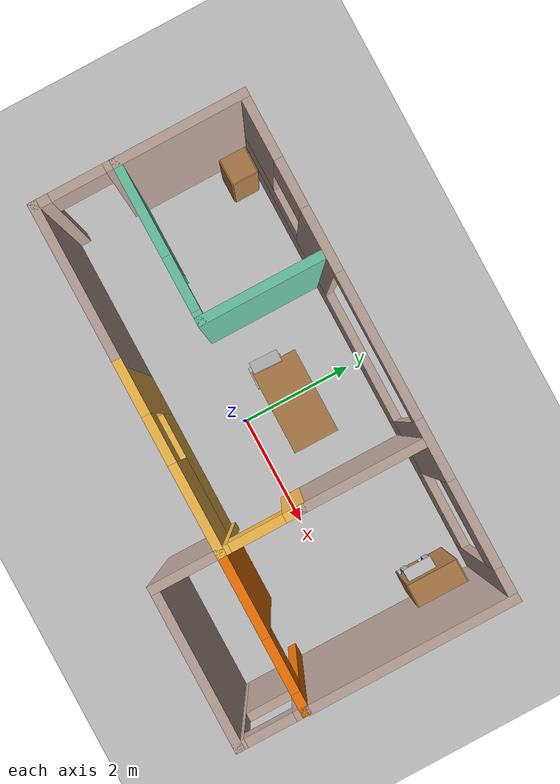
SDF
<sdf version="1.6">
 <world name="default">
  <plugin name="hello" filename="libhello.so"/>
  <light name="sun" type="directional">
   <pose>0 0 10 0 -0 0</pose>
   <diffuse>0.8 0.8 0.8 1</diffuse>
   <specular>0.2 0.2 0.2 1</specular>
   <attenuation>
    <range>1000</range>
    <constant>0.9</constant>
    <linear>0.01</linear>
    <quadratic>0.001</quadratic>
   </attenuation>
   <direction>-0.5 0.1 -0.9</direction>
  </light>
  <model name="ground_plane">
   <static>1</static>
   <link name="link">
    <collision name="collision">
     <geometry><plane><normal>0 0 1</normal><size>100 100</size></plane></geometry>
     <surface>
      <contact><collide_bitmask>65535</collide_bitmask></contact>
      <friction><ode><mu>100</mu><mu2>50</mu2></ode></friction>
     </surface>
    </collision>
    <visual name="visual">
     <cast_shadows>0</cast_shadows>
     <geometry><plane><normal>0 0 1</normal><size>100 100</size></plane></geometry>
     <material>
      <script><uri>file://media/materials/scripts/gazebo.material</uri><name>Gazebo/Grey</name></script>
     </material>
    </visual>
   </link>
  </model>
  <gravity>0 0 -9.8</gravity>
  <magnetic_field>6e-06 2.3e-05 -4.2e-05</magnetic_field>
  <atmosphere type="adiabatic"/>
  <physics name="default_physics" default="0" type="ode">
   <max_step_size>0.001</max_step_size>
   <real_time_factor>1</real_time_factor>
   <real_time_update_rate>1000</real_time_update_rate>
  </physics>
  <scene><ambient>0.4 0.4 0.4 1</ambient><background>0.7 0.7 0.7 1</background><shadows>1</shadows></scene>
  <spherical_coordinates>
   <surface_model>EARTH_WGS84</surface_model>
   <latitude_deg>0</latitude_deg>
   <longitude_deg>0</longitude_deg>
   <elevation>0</elevation>
   <heading_deg>0</heading_deg>
  </spherical_coordinates>
  <model name="Building">
   <link name="Wall_16">
    <collision name="Wall_16_Collision">
     <geometry><box><size>2.25 0.15 2.5</size></box></geometry>
     <pose>0 0 1.25 0 -0 0</pose>
    </collision>
    <visual name="Wall_16_Visual">
     <pose>0 0 1.25 0 -0 0</pose>
     <geometry><box><size>2.25 0.15 2.5</size></box></geometry>
     <material>
      <script><uri>file://media/materials/scripts/gazebo.material</uri><name>Gazebo/Grey</name></script>
      <ambient>0.760784 0.662745 0.627451 1</ambient>
     </material>
     <meta><layer>0</layer></meta>
    </visual>
    <pose>-4.15661 1.225 0 0 0 -1.5708</pose>
   </link>
   <link name="Wall_17">
    <pose>-2.85661 0.175 0 0 -0 0</pose>
    <visual name="Wall_17_Visual_0">
     <pose>-0.564012 0 1.25 0 -0 0</pose>
     <geometry><box><size>1.62197 0.15 2.5</size></box></geometry>
     <material>
      <script><uri>file://media/materials/scripts/gazebo.material</uri><name>Gazebo/Grey</name></script>
      <ambient>0.435294 0.796078 0.67451 1</ambient>
     </material>
     <meta><layer>0</layer></meta>
    </visual>
    <collision name="Wall_17_Collision_0">
     <geometry><box><size>1.62197 0.15 2.5</size></box></geometry>
     <pose>-0.564012 0 1.25 0 -0 0</pose>
    </collision>
    <visual name="Wall_17_Visual_1">
     <pose>1.26099 0 1.25 0 -0 0</pose>
     <geometry><box><size>0.228025 0.15 2.5</size></box></geometry>
     <material>
      <script><uri>file://media/materials/scripts/gazebo.material</uri><name>Gazebo/Grey</name></script>
      <ambient>0.435294 0.796078 0.67451 1</ambient>
     </material>
     <meta><layer>0</layer></meta>
    </visual>
    <collision name="Wall_17_Collision_1">
     <geometry><box><size>0.228025 0.15 2.5</size></box></geometry>
     <pose>1.26099 0 1.25 0 -0 0</pose>
    </collision>
    <visual name="Wall_17_Visual_2">
     <pose>0.696975 0 2.25 0 -0 0</pose>
     <geometry><box><size>0.9 0.15 0.5</size></box></geometry>
     <material>
      <script><uri>file://media/materials/scripts/gazebo.material</uri><name>Gazebo/Grey</name></script>
      <ambient>0.435294 0.796078 0.67451 1</ambient>
     </material>
     <meta><layer>0</layer></meta>
    </visual>
    <collision name="Wall_17_Collision_2">
     <geometry><box><size>0.9 0.15 0.5</size></box></geometry>
     <pose>0.696975 0 2.25 0 -0 0</pose>
    </collision>
   </link>
   <link name="Wall_19">
    <pose>-0.006613 -1.175 0 0 -0 0</pose>
    <visual name="Wall_19_Visual_0">
     <pose>-1.16987 0 1.25 0 -0 0</pose>
     <geometry><box><size>0.91025 0.15 2.5</size></box></geometry>
     <material>
      <script><uri>file://media/materials/scripts/gazebo.material</uri><name>Gazebo/Grey</name></script>
      <ambient>1 0.764706 0.305882 1</ambient>
     </material>
     <meta><layer>0</layer></meta>
    </visual>
    <collision name="Wall_19_Collision_0">
     <geometry><box><size>0.91025 0.15 2.5</size></box></geometry>
     <pose>-1.16987 0 1.25 0 -0 0</pose>
    </collision>
    <visual name="Wall_19_Visual_1">
     <pose>0.455125 0 0.6 0 -0 0</pose>
     <geometry><box><size>2.33975 0.15 1.2</size></box></geometry>
     <material>
      <script><uri>file://media/materials/scripts/gazebo.material</uri><name>Gazebo/Grey</name></script>
      <ambient>1 0.764706 0.305882 1</ambient>
     </material>
     <meta><layer>0</layer></meta>
    </visual>
    <collision name="Wall_19_Collision_1">
     <geometry><box><size>2.33975 0.15 1.2</size></box></geometry>
     <pose>0.455125 0 0.6 0 -0 0</pose>
    </collision>
    <visual name="Wall_19_Visual_2">
     <pose>0.855125 0 1.85 0 -0 0</pose>
     <geometry><box><size>1.53975 0.15 1.3</size></box></geometry>
     <material>
      <script><uri>file://media/materials/scripts/gazebo.material</uri><name>Gazebo/Grey</name></script>
      <ambient>1 0.764706 0.305882 1</ambient>
     </material>
     <meta><layer>0</layer></meta>
    </visual>
    <collision name="Wall_19_Collision_2">
     <geometry><box><size>1.53975 0.15 1.3</size></box></geometry>
     <pose>0.855125 0 1.85 0 -0 0</pose>
    </collision>
    <visual name="Wall_19_Visual_3">
     <pose>-0.31475 0 2.25 0 -0 0</pose>
     <geometry><box><size>0.8 0.15 0.5</size></box></geometry>
     <material>
      <script><uri>file://media/materials/scripts/gazebo.material</uri><name>Gazebo/Grey</name></script>
      <ambient>1 0.764706 0.305882 1</ambient>
     </material>
     <meta><layer>0</layer></meta>
    </visual>
    <collision name="Wall_19_Collision_3">
     <geometry><box><size>0.8 0.15 0.5</size></box></geometry>
     <pose>-0.31475 0 2.25 0 -0 0</pose>
    </collision>
   </link>
   <link name="Wall_20">
    <pose>1.54339 -0.5 0 0 -0 1.5708</pose>
    <visual name="Wall_20_Visual_0">
     <pose>-0.634187 0 1.25 0 -0 0</pose>
     <geometry><box><size>0.231625 0.15 2.5</size></box></geometry>
     <material>
      <script><uri>file://media/materials/scripts/gazebo.material</uri><name>Gazebo/Grey</name></script>
      <ambient>1 0.764706 0.305882 1</ambient>
     </material>
     <meta><layer>0</layer></meta>
    </visual>
    <collision name="Wall_20_Collision_0">
     <geometry><box><size>0.231625 0.15 2.5</size></box></geometry>
     <pose>-0.634187 0 1.25 0 -0 0</pose>
    </collision>
    <visual name="Wall_20_Visual_1">
     <pose>0.565813 0 1.25 0 -0 0</pose>
     <geometry><box><size>0.368375 0.15 2.5</size></box></geometry>
     <material>
      <script><uri>file://media/materials/scripts/gazebo.material</uri><name>Gazebo/Grey</name></script>
      <ambient>1 0.764706 0.305882 1</ambient>
     </material>
     <meta><layer>0</layer></meta>
    </visual>
    <collision name="Wall_20_Collision_1">
     <geometry><box><size>0.368375 0.15 2.5</size></box></geometry>
     <pose>0.565813 0 1.25 0 -0 0</pose>
    </collision>
    <visual name="Wall_20_Visual_2">
     <pose>-0.068375 0 2.25 0 -0 0</pose>
     <geometry><box><size>0.9 0.15 0.5</size></box></geometry>
     <material>
      <script><uri>file://media/materials/scripts/gazebo.material</uri><name>Gazebo/Grey</name></script>
      <ambient>1 0.764706 0.305882 1</ambient>
     </material>
     <meta><layer>0</layer></meta>
    </visual>
    <collision name="Wall_20_Collision_2">
     <geometry><box><size>0.9 0.15 0.5</size></box></geometry>
     <pose>-0.068375 0 2.25 0 -0 0</pose>
    </collision>
   </link>
   <link name="Wall_22">
    <collision name="Wall_22_Collision">
     <geometry><box><size>3.5 0.15 2.5</size></box></geometry>
     <pose>0 0 1.25 0 -0 0</pose>
    </collision>
    <visual name="Wall_22_Visual">
     <pose>0 0 1.25 0 -0 0</pose>
     <geometry><box><size>3.5 0.15 2.5</size></box></geometry>
     <material>
      <script><uri>file://media/materials/scripts/gazebo.material</uri><name>Gazebo/Grey</name></script>
      <ambient>0.760784 0.662745 0.627451 1</ambient>
     </material>
     <meta><layer>0</layer></meta>
    </visual>
    <pose>4.15661 0.6 0 0 -0 1.5708</pose>
   </link>
   <link name="Wall_23">
    <pose>-0.006613 2.275 0 0 -0 3.14159</pose>
    <visual name="Wall_23_Visual_0">
     <pose>-3.9381 0 1.25 0 -0 0</pose>
     <geometry><box><size>0.573805 0.15 2.5</size></box></geometry>
     <material>
      <script><uri>file://media/materials/scripts/gazebo.material</uri><name>Gazebo/Grey</name></script>
      <ambient>0.760784 0.662745 0.627451 1</ambient>
     </material>
     <meta><layer>0</layer></meta>
    </visual>
    <collision name="Wall_23_Collision_0">
     <geometry><box><size>0.573805 0.15 2.5</size></box></geometry>
     <pose>-3.9381 0 1.25 0 -0 0</pose>
    </collision>
    <visual name="Wall_23_Visual_1">
     <pose>-2.43037 0 0.25 0 -0 0</pose>
     <geometry><box><size>2.44166 0.15 0.5</size></box></geometry>
     <material>
      <script><uri>file://media/materials/scripts/gazebo.material</uri><name>Gazebo/Grey</name></script>
      <ambient>0.760784 0.662745 0.627451 1</ambient>
     </material>
     <meta><layer>0</layer></meta>
    </visual>
    <collision name="Wall_23_Collision_1">
     <geometry><box><size>2.44166 0.15 0.5</size></box></geometry>
     <pose>-2.43037 0 0.25 0 -0 0</pose>
    </collision>
    <visual name="Wall_23_Visual_2">
     <pose>1.50773 0 0.25 0 -0 0</pose>
     <geometry><box><size>5.43454 0.15 0.5</size></box></geometry>
     <material>
      <script><uri>file://media/materials/scripts/gazebo.material</uri><name>Gazebo/Grey</name></script>
      <ambient>0.760784 0.662745 0.627451 1</ambient>
     </material>
     <meta><layer>0</layer></meta>
    </visual>
    <collision name="Wall_23_Collision_2">
     <geometry><box><size>5.43454 0.15 0.5</size></box></geometry>
     <pose>1.50773 0 0.25 0 -0 0</pose>
    </collision>
    <visual name="Wall_23_Visual_3">
     <pose>1.74974 0 1.5 0 -0 0</pose>
     <geometry><box><size>1.06456 0.15 2</size></box></geometry>
     <material>
      <script><uri>file://media/materials/scripts/gazebo.material</uri><name>Gazebo/Grey</name></script>
      <ambient>0.760784 0.662745 0.627451 1</ambient>
     </material>
     <meta><layer>0</layer></meta>
    </visual>
    <collision name="Wall_23_Collision_3">
     <geometry><box><size>1.06456 0.15 2</size></box></geometry>
     <pose>1.74974 0 1.5 0 -0 0</pose>
    </collision>
    <visual name="Wall_23_Visual_4">
     <pose>3.25351 0 0.75 0 -0 0</pose>
     <geometry><box><size>1.94297 0.15 0.5</size></box></geometry>
     <material>
      <script><uri>file://media/materials/scripts/gazebo.material</uri><name>Gazebo/Grey</name></script>
      <ambient>0.760784 0.662745 0.627451 1</ambient>
     </material>
     <meta><layer>0</layer></meta>
    </visual>
    <collision name="Wall_23_Collision_4">
     <geometry><box><size>1.94297 0.15 0.5</size></box></geometry>
     <pose>3.25351 0 0.75 0 -0 0</pose>
    </collision>
    <visual name="Wall_23_Visual_5">
     <pose>-1.71037 0 1.5 0 -0 0</pose>
     <geometry><box><size>1.00166 0.15 2</size></box></geometry>
     <material>
      <script><uri>file://media/materials/scripts/gazebo.material</uri><name>Gazebo/Grey</name></script>
      <ambient>0.760784 0.662745 0.627451 1</ambient>
     </material>
     <meta><layer>0</layer></meta>
    </visual>
    <collision name="Wall_23_Collision_5">
     <geometry><box><size>1.00166 0.15 2</size></box></geometry>
     <pose>-1.71037 0 1.5 0 -0 0</pose>
    </collision>
    <visual name="Wall_23_Visual_6">
     <pose>-1.71037 0 1.5 0 -0 0</pose>
     <geometry><box><size>1.00166 0.15 2</size></box></geometry>
     <material>
      <script><uri>file://media/materials/scripts/gazebo.material</uri><name>Gazebo/Grey</name></script>
      <ambient>0.760784 0.662745 0.627451 1</ambient>
     </material>
     <meta><layer>0</layer></meta>
    </visual>
    <collision name="Wall_23_Collision_6">
     <geometry><box><size>1.00166 0.15 2</size></box></geometry>
     <pose>-1.71037 0 1.5 0 -0 0</pose>
    </collision>
    <visual name="Wall_23_Visual_7">
     <pose>3.65351 0 1.75 0 -0 0</pose>
     <geometry><box><size>1.14298 0.15 1.5</size></box></geometry>
     <material>
      <script><uri>file://media/materials/scripts/gazebo.material</uri><name>Gazebo/Grey</name></script>
      <ambient>0.760784 0.662745 0.627451 1</ambient>
     </material>
     <meta><layer>0</layer></meta>
    </visual>
    <collision name="Wall_23_Collision_7">
     <geometry><box><size>1.14298 0.15 1.5</size></box></geometry>
     <pose>3.65351 0 1.75 0 -0 0</pose>
    </collision>
    <visual name="Wall_23_Visual_8">
     <pose>2.68202 0 2.15 0 -0 0</pose>
     <geometry><box><size>0.8 0.15 0.7</size></box></geometry>
     <material>
      <script><uri>file://media/materials/scripts/gazebo.material</uri><name>Gazebo/Grey</name></script>
      <ambient>0.760784 0.662745 0.627451 1</ambient>
     </material>
     <meta><layer>0</layer></meta>
    </visual>
    <collision name="Wall_23_Collision_8">
     <geometry><box><size>0.8 0.15 0.7</size></box></geometry>
     <pose>2.68202 0 2.15 0 -0 0</pose>
    </collision>
    <visual name="Wall_23_Visual_9">
     <pose>-2.9312 0 2.25 0 -0 0</pose>
     <geometry><box><size>1.44 0.15 0.5</size></box></geometry>
     <material>
      <script><uri>file://media/materials/scripts/gazebo.material</uri><name>Gazebo/Grey</name></script>
      <ambient>0.760784 0.662745 0.627451 1</ambient>
     </material>
     <meta><layer>0</layer></meta>
    </visual>
    <collision name="Wall_23_Collision_9">
     <geometry><box><size>1.44 0.15 0.5</size></box></geometry>
     <pose>-2.9312 0 2.25 0 -0 0</pose>
    </collision>
    <visual name="Wall_23_Visual_10">
     <pose>0.003963 0 2.4 0 -0 0</pose>
     <geometry><box><size>2.427 0.15 0.2</size></box></geometry>
     <material>
      <script><uri>file://media/materials/scripts/gazebo.material</uri><name>Gazebo/Grey</name></script>
      <ambient>0.760784 0.662745 0.627451 1</ambient>
     </material>
     <meta><layer>0</layer></meta>
    </visual>
    <collision name="Wall_23_Collision_10">
     <geometry><box><size>2.427 0.15 0.2</size></box></geometry>
     <pose>0.003963 0 2.4 0 -0 0</pose>
    </collision>
    <visual name="Wall_23_Visual_11">
     <pose>0.003963 0 2.4 0 -0 0</pose>
     <geometry><box><size>2.427 0.15 0.2</size></box></geometry>
     <material>
      <script><uri>file://media/materials/scripts/gazebo.material</uri><name>Gazebo/Grey</name></script>
      <ambient>0.760784 0.662745 0.627451 1</ambient>
     </material>
     <meta><layer>0</layer></meta>
    </visual>
    <collision name="Wall_23_Collision_11">
     <geometry><box><size>2.427 0.15 0.2</size></box></geometry>
     <pose>0.003963 0 2.4 0 -0 0</pose>
    </collision>
   </link>
   <link name="Wall_25">
    <pose>-4.15661 -0.5 0 0 0 -1.5708</pose>
    <visual name="Wall_25_Visual_0">
     <pose>-0.618713 0 1.25 0 -0 0</pose>
     <geometry><box><size>0.262575 0.15 2.5</size></box></geometry>
     <material>
      <script><uri>file://media/materials/scripts/gazebo.material</uri><name>Gazebo/Grey</name></script>
      <ambient>0.760784 0.662745 0.627451 1</ambient>
     </material>
     <meta><layer>0</layer></meta>
    </visual>
    <collision name="Wall_25_Collision_0">
     <geometry><box><size>0.262575 0.15 2.5</size></box></geometry>
     <pose>-0.618713 0 1.25 0 -0 0</pose>
    </collision>
    <visual name="Wall_25_Visual_1">
     <pose>0.581287 0 1.25 0 -0 0</pose>
     <geometry><box><size>0.337425 0.15 2.5</size></box></geometry>
     <material>
      <script><uri>file://media/materials/scripts/gazebo.material</uri><name>Gazebo/Grey</name></script>
      <ambient>0.760784 0.662745 0.627451 1</ambient>
     </material>
     <meta><layer>0</layer></meta>
    </visual>
    <collision name="Wall_25_Collision_1">
     <geometry><box><size>0.337425 0.15 2.5</size></box></geometry>
     <pose>0.581287 0 1.25 0 -0 0</pose>
    </collision>
    <visual name="Wall_25_Visual_2">
     <pose>-0.037425 0 2.25 0 -0 0</pose>
     <geometry><box><size>0.9 0.15 0.5</size></box></geometry>
     <material>
      <script><uri>file://media/materials/scripts/gazebo.material</uri><name>Gazebo/Grey</name></script>
      <ambient>0.760784 0.662745 0.627451 1</ambient>
     </material>
     <meta><layer>0</layer></meta>
    </visual>
    <collision name="Wall_25_Collision_2">
     <geometry><box><size>0.9 0.15 0.5</size></box></geometry>
     <pose>-0.037425 0 2.25 0 -0 0</pose>
    </collision>
   </link>
   <link name="Wall_26">
    <collision name="Wall_26_Collision">
     <geometry><box><size>2.75 0.15 2.5</size></box></geometry>
     <pose>0 0 1.25 0 -0 0</pose>
    </collision>
    <visual name="Wall_26_Visual">
     <pose>0 0 1.25 0 -0 0</pose>
     <geometry><box><size>2.75 0.15 2.5</size></box></geometry>
     <material>
      <script><uri>file://media/materials/scripts/gazebo.material</uri><name>Gazebo/Grey</name></script>
      <ambient>0.760784 0.662745 0.627451 1</ambient>
     </material>
     <meta><layer>0</layer></meta>
    </visual>
    <pose>-2.85661 -1.175 0 0 -0 0</pose>
   </link>
   <link name="Wall_28">
    <pose>2.84339 -1.175 0 0 -0 0</pose>
    <visual name="Wall_28_Visual_0">
     <pose>-0.636763 0 1.25 0 -0 0</pose>
     <geometry><box><size>1.47647 0.15 2.5</size></box></geometry>
     <material>
      <script><uri>file://media/materials/scripts/gazebo.material</uri><name>Gazebo/Grey</name></script>
      <ambient>0.996078 0.47451 0.0196078 1</ambient>
     </material>
     <meta><layer>0</layer></meta>
    </visual>
    <collision name="Wall_28_Collision_0">
     <geometry><box><size>1.47647 0.15 2.5</size></box></geometry>
     <pose>-0.636763 0 1.25 0 -0 0</pose>
    </collision>
    <visual name="Wall_28_Visual_1">
     <pose>1.18824 0 1.25 0 -0 0</pose>
     <geometry><box><size>0.373525 0.15 2.5</size></box></geometry>
     <material>
      <script><uri>file://media/materials/scripts/gazebo.material</uri><name>Gazebo/Grey</name></script>
      <ambient>0.996078 0.47451 0.0196078 1</ambient>
     </material>
     <meta><layer>0</layer></meta>
    </visual>
    <collision name="Wall_28_Collision_1">
     <geometry><box><size>0.373525 0.15 2.5</size></box></geometry>
     <pose>1.18824 0 1.25 0 -0 0</pose>
    </collision>
    <visual name="Wall_28_Visual_2">
     <pose>0.551475 0 2.25 0 -0 0</pose>
     <geometry><box><size>0.9 0.15 0.5</size></box></geometry>
     <material>
      <script><uri>file://media/materials/scripts/gazebo.material</uri><name>Gazebo/Grey</name></script>
      <ambient>0.996078 0.47451 0.0196078 1</ambient>
     </material>
     <meta><layer>0</layer></meta>
    </visual>
    <collision name="Wall_28_Collision_2">
     <geometry><box><size>0.9 0.15 0.5</size></box></geometry>
     <pose>0.551475 0 2.25 0 -0 0</pose>
    </collision>
   </link>
   <link name="Wall_31">
    <collision name="Wall_31_Collision">
     <geometry><box><size>2.25 0.15 2.5</size></box></geometry>
     <pose>0 0 1.25 0 -0 0</pose>
    </collision>
    <visual name="Wall_31_Visual">
     <pose>0 0 1.25 0 -0 0</pose>
     <geometry><box><size>2.25 0.15 2.5</size></box></geometry>
     <material>
      <script><uri>file://media/materials/scripts/gazebo.material</uri><name>Gazebo/Grey</name></script>
      <ambient>0.435294 0.796078 0.67451 1</ambient>
     </material>
     <meta><layer>0</layer></meta>
    </visual>
    <pose>-1.55661 1.225 0 0 -0 1.5708</pose>
   </link>
   <link name="Wall_33">
    <collision name="Wall_33_Collision">
     <geometry><box><size>2.25 0.15 2.5</size></box></geometry>
     <pose>0 0 1.25 0 -0 0</pose>
    </collision>
    <visual name="Wall_33_Visual">
     <pose>0 0 1.25 0 -0 0</pose>
     <geometry><box><size>2.25 0.15 2.5</size></box></geometry>
     <material>
      <script><uri>file://media/materials/scripts/gazebo.material</uri><name>Gazebo/Grey</name></script>
      <ambient>0.760784 0.662745 0.627451 1</ambient>
     </material>
     <meta><layer>0</layer></meta>
    </visual>
    <pose>1.54339 1.225 0 0 -0 1.5708</pose>
   </link>
   <link name="Wall_36">
    <collision name="Wall_36_Collision">
     <geometry><box><size>1.25 0.15 2.5</size></box></geometry>
     <pose>0 0 1.25 0 -0 0</pose>
    </collision>
    <visual name="Wall_36_Visual">
     <pose>0 0 1.25 0 -0 0</pose>
     <geometry><box><size>1.25 0.15 2.5</size></box></geometry>
     <material>
      <script><uri>file://media/materials/scripts/gazebo.material</uri><name>Gazebo/Grey</name></script>
      <ambient>0.760784 0.662745 0.627451 1</ambient>
     </material>
     <meta><layer>0</layer></meta>
    </visual>
    <pose>1.54339 -1.725 0 0 0 -1.5708</pose>
   </link>
   <link name="Wall_37">
    <collision name="Wall_37_Collision">
     <geometry><box><size>2.75 0.15 2.5</size></box></geometry>
     <pose>0 0 1.25 0 -0 0</pose>
    </collision>
    <visual name="Wall_37_Visual">
     <pose>0 0 1.25 0 -0 0</pose>
     <geometry><box><size>2.75 0.15 2.5</size></box></geometry>
     <material>
      <script><uri>file://media/materials/scripts/gazebo.material</uri><name>Gazebo/Grey</name></script>
      <ambient>0.760784 0.662745 0.627451 1</ambient>
     </material>
     <meta><layer>0</layer></meta>
    </visual>
    <pose>2.84339 -2.275 0 0 -0 0</pose>
   </link>
   <link name="Wall_38">
    <pose>4.14339 -1.725 0 0 -0 1.5708</pose>
    <visual name="Wall_38_Visual_0">
     <pose>-0.5227 0 1.25 0 -0 0</pose>
     <geometry><box><size>0.2046 0.15 2.5</size></box></geometry>
     <material>
      <script><uri>file://media/materials/scripts/gazebo.material</uri><name>Gazebo/Grey</name></script>
      <ambient>0.760784 0.662745 0.627451 1</ambient>
     </material>
     <meta><layer>0</layer></meta>
    </visual>
    <collision name="Wall_38_Collision_0">
     <geometry><box><size>0.2046 0.15 2.5</size></box></geometry>
     <pose>-0.5227 0 1.25 0 -0 0</pose>
    </collision>
    <visual name="Wall_38_Visual_1">
     <pose>0.1023 0 0.75 0 -0 0</pose>
     <geometry><box><size>1.0454 0.15 1.5</size></box></geometry>
     <material>
      <script><uri>file://media/materials/scripts/gazebo.material</uri><name>Gazebo/Grey</name></script>
      <ambient>0.760784 0.662745 0.627451 1</ambient>
     </material>
     <meta><layer>0</layer></meta>
    </visual>
    <collision name="Wall_38_Collision_1">
     <geometry><box><size>1.0454 0.15 1.5</size></box></geometry>
     <pose>0.1023 0 0.75 0 -0 0</pose>
    </collision>
    <visual name="Wall_38_Visual_2">
     <pose>0.5023 0 2 0 -0 0</pose>
     <geometry><box><size>0.2454 0.15 1</size></box></geometry>
     <material>
      <script><uri>file://media/materials/scripts/gazebo.material</uri><name>Gazebo/Grey</name></script>
      <ambient>0.760784 0.662745 0.627451 1</ambient>
     </material>
     <meta><layer>0</layer></meta>
    </visual>
    <collision name="Wall_38_Collision_2">
     <geometry><box><size>0.2454 0.15 1</size></box></geometry>
     <pose>0.5023 0 2 0 -0 0</pose>
    </collision>
    <visual name="Wall_38_Visual_3">
     <pose>-0.0204 0 2.4 0 -0 0</pose>
     <geometry><box><size>0.8 0.15 0.2</size></box></geometry>
     <material>
      <script><uri>file://media/materials/scripts/gazebo.material</uri><name>Gazebo/Grey</name></script>
      <ambient>0.760784 0.662745 0.627451 1</ambient>
     </material>
     <meta><layer>0</layer></meta>
    </visual>
    <collision name="Wall_38_Collision_3">
     <geometry><box><size>0.8 0.15 0.2</size></box></geometry>
     <pose>-0.0204 0 2.4 0 -0 0</pose>
    </collision>
   </link>
   <static>1</static>
  </model>
  <model name="table">
   <static>1</static>
   <link name="link">
    <collision name="surface">
     <pose>0 0 1 0 -0 0</pose>
     <geometry><box><size>1.5 0.8 0.03</size></box></geometry>
     <surface><friction><ode><mu>0.6</mu><mu2>0.6</mu2></ode></friction></surface>
    </collision>
    <visual name="visual1">
     <pose>0 0 1 0 -0 0</pose>
     <geometry><box><size>1.5 0.8 0.03</size></box></geometry>
     <material>
      <script><uri>file://media/materials/scripts/gazebo.material</uri><name>Gazebo/Wood</name></script>
     </material>
    </visual>
    <collision name="front_left_leg">
     <pose>0.68 0.38 0.5 0 -0 0</pose>
     <geometry><cylinder><radius>0.02</radius><length>1</length></cylinder></geometry>
    </collision>
    <visual name="front_left_leg">
     <pose>0.68 0.38 0.5 0 -0 0</pose>
     <geometry><cylinder><radius>0.02</radius><length>1</length></cylinder></geometry>
     <material>
      <script><uri>file://media/materials/scripts/gazebo.material</uri><name>Gazebo/Grey</name></script>
     </material>
    </visual>
    <collision name="front_right_leg">
     <pose>0.68 -0.38 0.5 0 -0 0</pose>
     <geometry><cylinder><radius>0.02</radius><length>1</length></cylinder></geometry>
    </collision>
    <visual name="front_right_leg">
     <pose>0.68 -0.38 0.5 0 -0 0</pose>
     <geometry><cylinder><radius>0.02</radius><length>1</length></cylinder></geometry>
     <material>
      <script><uri>file://media/materials/scripts/gazebo.material</uri><name>Gazebo/Grey</name></script>
     </material>
    </visual>
    <collision name="back_right_leg">
     <pose>-0.68 -0.38 0.5 0 -0 0</pose>
     <geometry><cylinder><radius>0.02</radius><length>1</length></cylinder></geometry>
    </collision>
    <visual name="back_right_leg">
     <pose>-0.68 -0.38 0.5 0 -0 0</pose>
     <geometry><cylinder><radius>0.02</radius><length>1</length></cylinder></geometry>
     <material>
      <script><uri>file://media/materials/scripts/gazebo.material</uri><name>Gazebo/Grey</name></script>
     </material>
    </visual>
    <collision name="back_left_leg">
     <pose>-0.68 0.38 0.5 0 -0 0</pose>
     <geometry><cylinder><radius>0.02</radius><length>1</length></cylinder></geometry>
    </collision>
    <visual name="back_left_leg">
     <pose>-0.68 0.38 0.5 0 -0 0</pose>
     <geometry><cylinder><radius>0.02</radius><length>1</length></cylinder></geometry>
     <material>
      <script><uri>file://media/materials/scripts/gazebo.material</uri><name>Gazebo/Grey</name></script>
     </material>
    </visual>
   </link>
   <pose>0.106018 0.870953 0 0 -0 0</pose>
  </model>
  <model name="cabinet">
   <static>1</static>
   <link name="cabinet_bottom_plate">
    <inertial>
     <pose>0 0 -1 0 -0 0</pose>
     <inertia><ixx>2.05</ixx><ixy>0</ixy><ixz>0</ixz><iyy>2.05</iyy><iyz>0</iyz><izz>2.05</izz></inertia>
     <mass>25</mass>
    </inertial>
    <collision name="cabinet_bottom_plate_geom">
     <pose>0 0 0.01 0 -0 0</pose>
     <geometry><box><size>0.45 0.45 0.02</size></box></geometry>
    </collision>
    <visual name="cabinet_bottom_plate_geom_visual">
     <pose>0 0 0.01 0 -0 0</pose>
     <geometry><box><size>0.45 0.45 0.02</size></box></geometry>
     <material>
      <script><uri>file://media/materials/scripts/gazebo.material</uri><name>Gazebo/Wood</name></script>
     </material>
    </visual>
    <collision name="cabinet_bottom_plate_geom_cabinet_back_plate">
     <pose>0.235 0 0.51 0 -0 0</pose>
     <geometry><box><size>0.02 0.45 1.02</size></box></geometry>
    </collision>
    <visual name="cabinet_bottom_plate_geom_cabinet_back_plate_visual">
     <pose>0.235 0 0.51 0 -0 0</pose>
     <geometry><box><size>0.02 0.45 1.02</size></box></geometry>
     <material>
      <script><uri>file://media/materials/scripts/gazebo.material</uri><name>Gazebo/Wood</name></script>
     </material>
    </visual>
    <collision name="cabinet_bottom_plate_geom_cabinet_left_plate">
     <pose>0 0.235 0.51 0 -0 0</pose>
     <geometry><box><size>0.45 0.02 1.02</size></box></geometry>
    </collision>
    <visual name="cabinet_bottom_plate_geom_cabinet_left_plate_visual">
     <pose>0 0.235 0.51 0 -0 0</pose>
     <geometry><box><size>0.45 0.02 1.02</size></box></geometry>
     <material>
      <script><uri>file://media/materials/scripts/gazebo.material</uri><name>Gazebo/Wood</name></script>
     </material>
    </visual>
    <collision name="cabinet_bottom_plate_geom_cabinet_middle_plate">
     <pose>0 0 0.51 0 -0 0</pose>
     <geometry><box><size>0.45 0.45 0.02</size></box></geometry>
    </collision>
    <visual name="cabinet_bottom_plate_geom_cabinet_middle_plate_visual">
     <pose>0 0 0.51 0 -0 0</pose>
     <geometry><box><size>0.45 0.45 0.02</size></box></geometry>
     <material>
      <script><uri>file://media/materials/scripts/gazebo.material</uri><name>Gazebo/Wood</name></script>
     </material>
    </visual>
    <collision name="cabinet_bottom_plate_geom_cabinet_right_plate">
     <pose>0 -0.235 0.51 0 -0 0</pose>
     <geometry><box><size>0.45 0.02 1.02</size></box></geometry>
    </collision>
    <visual name="cabinet_bottom_plate_geom_cabinet_right_plate_visual">
     <pose>0 -0.235 0.51 0 -0 0</pose>
     <geometry><box><size>0.45 0.02 1.02</size></box></geometry>
     <material>
      <script><uri>file://media/materials/scripts/gazebo.material</uri><name>Gazebo/Wood</name></script>
     </material>
    </visual>
    <collision name="cabinet_bottom_plate_geom_cabinet_top_plate">
     <pose>0 0 1.01 0 -0 0</pose>
     <geometry><box><size>0.45 0.45 0.02</size></box></geometry>
    </collision>
    <visual name="cabinet_bottom_plate_geom_cabinet_top_plate_visual">
     <pose>0 0 1.01 0 -0 0</pose>
     <geometry><box><size>0.45 0.45 0.02</size></box></geometry>
     <material>
      <script><uri>file://media/materials/scripts/gazebo.material</uri><name>Gazebo/Wood</name></script>
     </material>
    </visual>
   </link>
   <pose>-3.71509 1.88241 0 0 -0 0</pose>
  </model>
  <model name="bookshelf">
   <static>1</static>
   <link name="link">
    <inertial><mass>1</mass></inertial>
    <collision name="back">
     <pose>0 0.005 0.6 0 -0 0</pose>
     <geometry><box><size>0.9 0.01 1.2</size></box></geometry>
    </collision>
    <visual name="visual1">
     <pose>0 0.005 0.6 0 -0 0</pose>
     <geometry><box><size>0.9 0.01 1.2</size></box></geometry>
     <material>
      <script><uri>file://media/materials/scripts/gazebo.material</uri><name>Gazebo/Wood</name></script>
     </material>
    </visual>
    <collision name="left_side">
     <pose>0.45 -0.195 0.6 0 -0 0</pose>
     <geometry><box><size>0.02 0.4 1.2</size></box></geometry>
    </collision>
    <visual name="visual2">
     <pose>0.45 -0.195 0.6 0 -0 0</pose>
     <geometry><box><size>0.02 0.4 1.2</size></box></geometry>
     <material>
      <script><uri>file://media/materials/scripts/gazebo.material</uri><name>Gazebo/Wood</name></script>
     </material>
    </visual>
    <collision name="right_side">
     <pose>-0.45 -0.195 0.6 0 -0 0</pose>
     <geometry><box><size>0.02 0.4 1.2</size></box></geometry>
    </collision>
    <visual name="visual3">
     <pose>-0.45 -0.195 0.6 0 -0 0</pose>
     <geometry><box><size>0.02 0.4 1.2</size></box></geometry>
     <material>
      <script><uri>file://media/materials/scripts/gazebo.material</uri><name>Gazebo/Wood</name></script>
     </material>
    </visual>
    <collision name="bottom">
     <pose>0 -0.195 0.03 0 -0 0</pose>
     <geometry><box><size>0.88 0.4 0.06</size></box></geometry>
    </collision>
    <visual name="visual4">
     <pose>0 -0.195 0.03 0 -0 0</pose>
     <geometry><box><size>0.88 0.4 0.06</size></box></geometry>
     <material>
      <script><uri>file://media/materials/scripts/gazebo.material</uri><name>Gazebo/Wood</name></script>
     </material>
    </visual>
    <collision name="top">
     <pose>0 -0.195 1.19 0 -0 0</pose>
     <geometry><box><size>0.88 0.4 0.02</size></box></geometry>
    </collision>
    <visual name="visual5">
     <pose>0 -0.195 1.19 0 -0 0</pose>
     <geometry><box><size>0.88 0.4 0.02</size></box></geometry>
     <material>
      <script><uri>file://media/materials/scripts/gazebo.material</uri><name>Gazebo/Wood</name></script>
     </material>
    </visual>
    <collision name="low_shelf">
     <pose>0 -0.195 0.43 0 -0 0</pose>
     <geometry><box><size>0.88 0.4 0.02</size></box></geometry>
    </collision>
    <visual name="visual6">
     <pose>0 -0.195 0.43 0 -0 0</pose>
     <geometry><box><size>0.88 0.4 0.02</size></box></geometry>
     <material>
      <script><uri>file://media/materials/scripts/gazebo.material</uri><name>Gazebo/Wood</name></script>
     </material>
    </visual>
    <collision name="high_shelf">
     <pose>0 -0.195 0.8 0 -0 0</pose>
     <geometry><box><size>0.88 0.4 0.02</size></box></geometry>
    </collision>
    <visual name="visual7">
     <pose>0 -0.195 0.8 0 -0 0</pose>
     <geometry><box><size>0.88 0.4 0.02</size></box></geometry>
     <material>
      <script><uri>file://media/materials/scripts/gazebo.material</uri><name>Gazebo/Wood</name></script>
     </material>
    </visual>
   </link>
   <pose>3.58215 1.5 0 0 -0 1.5707</pose>
  </model>
  <model name="humanoid_robot">
   <link name="body::body">
    <pose>0.1 0 0.9 0 -0 0</pose>
    <inertial>
     <mass>1</mass>
     <pose>0 0 1 0 -0 0</pose>
     <inertia><ixx>0.5</ixx><iyy>1</iyy><izz>0.1</izz><ixy>0</ixy><ixz>0</ixz><iyz>0</iyz></inertia>
    </inertial>
    <collision name="collision"><geometry><box><size>0.2 0.5 0.1</size></box></geometry></collision>
    <visual name="visual"><geometry><box><size>0.2 0.5 0.1</size></box></geometry></visual>
   </link>
   <link name="leg::upper_leg">
    <pose>0 0.2 0.65 0 0.2 0</pose>
    <inertial>
     <pose>0 0 0.5 0 0.2 0</pose>
     <inertia><ixx>0.1</ixx><ixy>0</ixy><ixz>0</ixz><iyy>0.1</iyy><iyz>0</iyz><izz>0.1</izz></inertia>
     <mass>1</mass>
    </inertial>
    <collision name="collision"><geometry><box><size>0.05 0.1 0.4</size></box></geometry></collision>
    <visual name="visual">
     <geometry><box><size>0.05 0.1 0.4</size></box></geometry>
     <material><script><uri>__default__</uri><name>__default__</name></script></material>
    </visual>
   </link>
   <link name="leg::lower_leg">
    <pose>0 0.2 0.3 0 -0.2 0</pose>
    <inertial>
     <pose>0 0 0.2 0 -0.2 0</pose>
     <inertia><ixx>0.1</ixx><ixy>0</ixy><ixz>0</ixz><iyy>0.1</iyy><iyz>0</iyz><izz>0.1</izz></inertia>
     <mass>1</mass>
    </inertial>
    <collision name="collision"><geometry><box><size>0.05 0.1 0.3</size></box></geometry></collision>
    <visual name="visual">
     <geometry><box><size>0.05 0.1 0.3</size></box></geometry>
     <material><script><uri>__default__</uri><name>__default__</name></script></material>
    </visual>
   </link>
   <link name="leg::foot">
    <pose>0.15 0.2 0.1 0 -0 0</pose>
    <inertial>
     <pose>0.3 0 0.1 0 -0 0</pose>
     <inertia><ixx>0.3</ixx><ixy>0</ixy><ixz>0</ixz><iyy>0.3</iyy><iyz>0</iyz><izz>0.3</izz></inertia>
     <mass>20</mass>
    </inertial>
    <collision name="collision"><geometry><box><size>0.4 0.2 0.1</size></box></geometry></collision>
    <visual name="visual">
     <geometry><box><size>0.4 0.2 0.1</size></box></geometry>
     <material><script><uri>__default__</uri><name>__default__</name></script></material>
    </visual>
   </link>
   <static>0</static>
   <joint name="leg::upper_leg_lower_leg" type="revolute">
    <pose>0 0 0.16 0 -0 0</pose>
    <parent>leg::upper_leg</parent>
    <child>leg::lower_leg</child>
    <axis>
     <limit><lower>0</lower><upper>0.5</upper></limit>
     <xyz>0 1 0</xyz>
     <use_parent_model_frame>1</use_parent_model_frame>
     <dynamics><spring_reference>0</spring_reference><spring_stiffness>0</spring_stiffness></dynamics>
    </axis>
   </joint>
   <joint name="leg::lower_leg_foot" type="revolute">
    <pose>-0.1 0 0.05 0 -0 0</pose>
    <parent>leg::lower_leg</parent>
    <child>leg::foot</child>
    <axis>
     <limit><lower>0</lower><upper>0.5</upper></limit>
     <xyz>0 1 0</xyz>
     <use_parent_model_frame>1</use_parent_model_frame>
     <dynamics><spring_reference>0</spring_reference><spring_stiffness>0</spring_stiffness></dynamics>
    </axis>
   </joint>
   <link name="leg2::upper_leg">
    <pose>0 -0.2 0.65 0 0.2 0</pose>
    <inertial>
     <pose>0 0 0.5 0 0.2 0</pose>
     <inertia><ixx>0.1</ixx><ixy>0</ixy><ixz>0</ixz><iyy>0.1</iyy><iyz>0</iyz><izz>0.1</izz></inertia>
     <mass>1</mass>
    </inertial>
    <collision name="collision"><geometry><box><size>0.05 0.1 0.4</size></box></geometry></collision>
    <visual name="visual">
     <geometry><box><size>0.05 0.1 0.4</size></box></geometry>
     <material><script><uri>__default__</uri><name>__default__</name></script></material>
    </visual>
   </link>
   <link name="leg2::lower_leg">
    <pose>0 -0.2 0.3 0 -0.2 0</pose>
    <inertial>
     <pose>0 0 0.2 0 -0.2 0</pose>
     <inertia><ixx>0.1</ixx><ixy>0</ixy><ixz>0</ixz><iyy>0.1</iyy><iyz>0</iyz><izz>0.1</izz></inertia>
     <mass>1</mass>
    </inertial>
    <collision name="collision"><geometry><box><size>0.05 0.1 0.3</size></box></geometry></collision>
    <visual name="visual">
     <geometry><box><size>0.05 0.1 0.3</size></box></geometry>
     <material><script><uri>__default__</uri><name>__default__</name></script></material>
    </visual>
   </link>
   <link name="leg2::foot">
    <pose>0.15 -0.2 0.1 0 -0 0</pose>
    <inertial>
     <pose>0.3 0 0.1 0 -0 0</pose>
     <inertia><ixx>0.3</ixx><ixy>0</ixy><ixz>0</ixz><iyy>0.3</iyy><iyz>0</iyz><izz>0.3</izz></inertia>
     <mass>20</mass>
    </inertial>
    <collision name="collision"><geometry><box><size>0.4 0.2 0.1</size></box></geometry></collision>
    <visual name="visual">
     <geometry><box><size>0.4 0.2 0.1</size></box></geometry>
     <material><script><uri>__default__</uri><name>__default__</name></script></material>
    </visual>
   </link>
   <static>0</static>
   <joint name="leg2::upper_leg_lower_leg" type="revolute">
    <pose>0 0 0.16 0 -0 0</pose>
    <parent>leg2::upper_leg</parent>
    <child>leg2::lower_leg</child>
    <axis>
     <limit><lower>0</lower><upper>0.5</upper></limit>
     <xyz>0 1 0</xyz>
     <use_parent_model_frame>1</use_parent_model_frame>
     <dynamics><spring_reference>0</spring_reference><spring_stiffness>0</spring_stiffness></dynamics>
    </axis>
   </joint>
   <joint name="leg2::lower_leg_foot" type="revolute">
    <pose>-0.1 0 0.05 0 -0 0</pose>
    <parent>leg2::lower_leg</parent>
    <child>leg2::foot</child>
    <axis>
     <limit><lower>0</lower><upper>0.5</upper></limit>
     <xyz>0 1 0</xyz>
     <use_parent_model_frame>1</use_parent_model_frame>
     <dynamics><spring_reference>0</spring_reference><spring_stiffness>0</spring_stiffness></dynamics>
    </axis>
   </joint>
   <joint name="body_left_leg" type="revolute">
    <pose>0 0 0.2 0 -0 0</pose>
    <parent>body::body</parent>
    <child>leg::upper_leg</child>
    <axis>
     <limit><lower>-0.1</lower><upper>0.1</upper></limit>
     <xyz>0 1 0</xyz>
     <use_parent_model_frame>0</use_parent_model_frame>
     <dynamics><spring_reference>0</spring_reference><spring_stiffness>0</spring_stiffness></dynamics>
    </axis>
   </joint>
   <joint name="body_right_leg" type="revolute">
    <pose>0 0 0.2 0 -0 0</pose>
    <parent>body::body</parent>
    <child>leg2::upper_leg</child>
    <axis>
     <limit><lower>-0.1</lower><upper>0.1</upper></limit>
     <xyz>0 1 0</xyz>
     <use_parent_model_frame>0</use_parent_model_frame>
     <dynamics><spring_reference>0</spring_reference><spring_stiffness>0</spring_stiffness></dynamics>
    </axis>
   </joint>
   <pose>-0.708992 0.75072 0.156972 0.0027 -0.080611 -0.033326</pose>
  </model>
  <model name="humanoid_robot_0">
   <link name="body::body">
    <pose>0.1 0 0.9 0 -0 0</pose>
    <inertial>
     <mass>1</mass>
     <pose>0 0 1 0 -0 0</pose>
     <inertia><ixx>0.5</ixx><iyy>1</iyy><izz>0.1</izz><ixy>0</ixy><ixz>0</ixz><iyz>0</iyz></inertia>
    </inertial>
    <collision name="collision"><geometry><box><size>0.2 0.5 0.1</size></box></geometry></collision>
    <visual name="visual"><geometry><box><size>0.2 0.5 0.1</size></box></geometry></visual>
   </link>
   <link name="leg::upper_leg">
    <pose>0 0.2 0.65 0 0.2 0</pose>
    <inertial>
     <pose>0 0 0.5 0 0.2 0</pose>
     <inertia><ixx>0.1</ixx><ixy>0</ixy><ixz>0</ixz><iyy>0.1</iyy><iyz>0</iyz><izz>0.1</izz></inertia>
     <mass>1</mass>
    </inertial>
    <collision name="collision"><geometry><box><size>0.05 0.1 0.4</size></box></geometry></collision>
    <visual name="visual">
     <geometry><box><size>0.05 0.1 0.4</size></box></geometry>
     <material><script><uri>__default__</uri><name>__default__</name></script></material>
    </visual>
   </link>
   <link name="leg::lower_leg">
    <pose>0 0.2 0.3 0 -0.2 0</pose>
    <inertial>
     <pose>0 0 0.2 0 -0.2 0</pose>
     <inertia><ixx>0.1</ixx><ixy>0</ixy><ixz>0</ixz><iyy>0.1</iyy><iyz>0</iyz><izz>0.1</izz></inertia>
     <mass>1</mass>
    </inertial>
    <collision name="collision"><geometry><box><size>0.05 0.1 0.3</size></box></geometry></collision>
    <visual name="visual">
     <geometry><box><size>0.05 0.1 0.3</size></box></geometry>
     <material><script><uri>__default__</uri><name>__default__</name></script></material>
    </visual>
   </link>
   <link name="leg::foot">
    <pose>0.15 0.2 0.1 0 -0 0</pose>
    <inertial>
     <pose>0.3 0 0.1 0 -0 0</pose>
     <inertia><ixx>0.3</ixx><ixy>0</ixy><ixz>0</ixz><iyy>0.3</iyy><iyz>0</iyz><izz>0.3</izz></inertia>
     <mass>20</mass>
    </inertial>
    <collision name="collision"><geometry><box><size>0.4 0.2 0.1</size></box></geometry></collision>
    <visual name="visual">
     <geometry><box><size>0.4 0.2 0.1</size></box></geometry>
     <material><script><uri>__default__</uri><name>__default__</name></script></material>
    </visual>
   </link>
   <static>0</static>
   <joint name="leg::upper_leg_lower_leg" type="revolute">
    <pose>0 0 0.16 0 -0 0</pose>
    <parent>leg::upper_leg</parent>
    <child>leg::lower_leg</child>
    <axis>
     <limit><lower>0</lower><upper>0.5</upper></limit>
     <xyz>0 1 0</xyz>
     <use_parent_model_frame>1</use_parent_model_frame>
     <dynamics><spring_reference>0</spring_reference><spring_stiffness>0</spring_stiffness></dynamics>
    </axis>
   </joint>
   <joint name="leg::lower_leg_foot" type="revolute">
    <pose>-0.1 0 0.05 0 -0 0</pose>
    <parent>leg::lower_leg</parent>
    <child>leg::foot</child>
    <axis>
     <limit><lower>0</lower><upper>0.5</upper></limit>
     <xyz>0 1 0</xyz>
     <use_parent_model_frame>1</use_parent_model_frame>
     <dynamics><spring_reference>0</spring_reference><spring_stiffness>0</spring_stiffness></dynamics>
    </axis>
   </joint>
   <link name="leg2::upper_leg">
    <pose>0 -0.2 0.65 0 0.2 0</pose>
    <inertial>
     <pose>0 0 0.5 0 0.2 0</pose>
     <inertia><ixx>0.1</ixx><ixy>0</ixy><ixz>0</ixz><iyy>0.1</iyy><iyz>0</iyz><izz>0.1</izz></inertia>
     <mass>1</mass>
    </inertial>
    <collision name="collision"><geometry><box><size>0.05 0.1 0.4</size></box></geometry></collision>
    <visual name="visual">
     <geometry><box><size>0.05 0.1 0.4</size></box></geometry>
     <material><script><uri>__default__</uri><name>__default__</name></script></material>
    </visual>
   </link>
   <link name="leg2::lower_leg">
    <pose>0 -0.2 0.3 0 -0.2 0</pose>
    <inertial>
     <pose>0 0 0.2 0 -0.2 0</pose>
     <inertia><ixx>0.1</ixx><ixy>0</ixy><ixz>0</ixz><iyy>0.1</iyy><iyz>0</iyz><izz>0.1</izz></inertia>
     <mass>1</mass>
    </inertial>
    <collision name="collision"><geometry><box><size>0.05 0.1 0.3</size></box></geometry></collision>
    <visual name="visual">
     <geometry><box><size>0.05 0.1 0.3</size></box></geometry>
     <material><script><uri>__default__</uri><name>__default__</name></script></material>
    </visual>
   </link>
   <link name="leg2::foot">
    <pose>0.15 -0.2 0.1 0 -0 0</pose>
    <inertial>
     <pose>0.3 0 0.1 0 -0 0</pose>
     <inertia><ixx>0.3</ixx><ixy>0</ixy><ixz>0</ixz><iyy>0.3</iyy><iyz>0</iyz><izz>0.3</izz></inertia>
     <mass>20</mass>
    </inertial>
    <collision name="collision"><geometry><box><size>0.4 0.2 0.1</size></box></geometry></collision>
    <visual name="visual">
     <geometry><box><size>0.4 0.2 0.1</size></box></geometry>
     <material><script><uri>__default__</uri><name>__default__</name></script></material>
    </visual>
   </link>
   <static>0</static>
   <joint name="leg2::upper_leg_lower_leg" type="revolute">
    <pose>0 0 0.16 0 -0 0</pose>
    <parent>leg2::upper_leg</parent>
    <child>leg2::lower_leg</child>
    <axis>
     <limit><lower>0</lower><upper>0.5</upper></limit>
     <xyz>0 1 0</xyz>
     <use_parent_model_frame>1</use_parent_model_frame>
     <dynamics><spring_reference>0</spring_reference><spring_stiffness>0</spring_stiffness></dynamics>
    </axis>
   </joint>
   <joint name="leg2::lower_leg_foot" type="revolute">
    <pose>-0.1 0 0.05 0 -0 0</pose>
    <parent>leg2::lower_leg</parent>
    <child>leg2::foot</child>
    <axis>
     <limit><lower>0</lower><upper>0.5</upper></limit>
     <xyz>0 1 0</xyz>
     <use_parent_model_frame>1</use_parent_model_frame>
     <dynamics><spring_reference>0</spring_reference><spring_stiffness>0</spring_stiffness></dynamics>
    </axis>
   </joint>
   <joint name="body_left_leg" type="revolute">
    <pose>0 0 0.2 0 -0 0</pose>
    <parent>body::body</parent>
    <child>leg::upper_leg</child>
    <axis>
     <limit><lower>-0.1</lower><upper>0.1</upper></limit>
     <xyz>0 1 0</xyz>
     <use_parent_model_frame>0</use_parent_model_frame>
     <dynamics><spring_reference>0</spring_reference><spring_stiffness>0</spring_stiffness></dynamics>
    </axis>
   </joint>
   <joint name="body_right_leg" type="revolute">
    <pose>0 0 0.2 0 -0 0</pose>
    <parent>body::body</parent>
    <child>leg2::upper_leg</child>
    <axis>
     <limit><lower>-0.1</lower><upper>0.1</upper></limit>
     <xyz>0 1 0</xyz>
     <use_parent_model_frame>0</use_parent_model_frame>
     <dynamics><spring_reference>0</spring_reference><spring_stiffness>0</spring_stiffness></dynamics>
    </axis>
   </joint>
   <pose>3.58079 1.35995 0.17281 -8e-06 -0.241006 -9.4e-05</pose>
  </model>
 </world>
</sdf>
